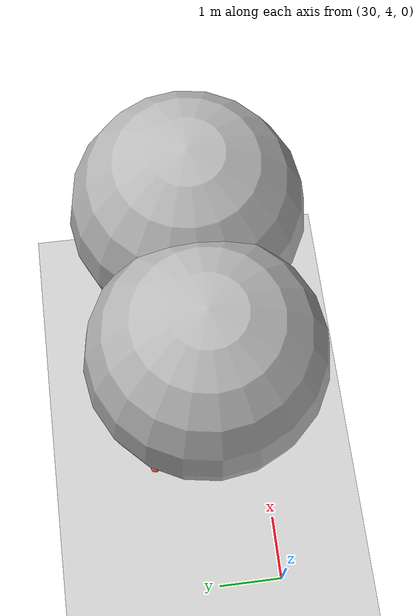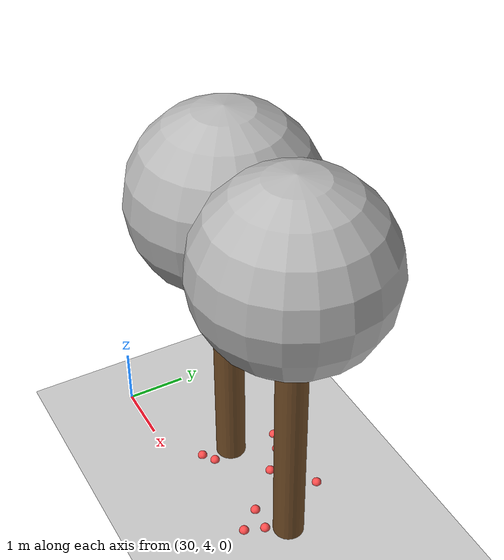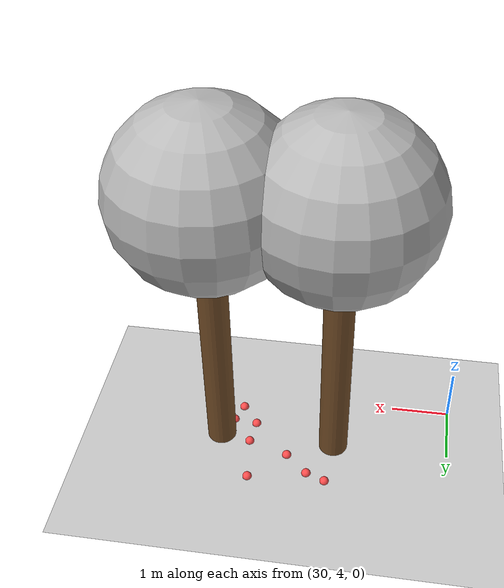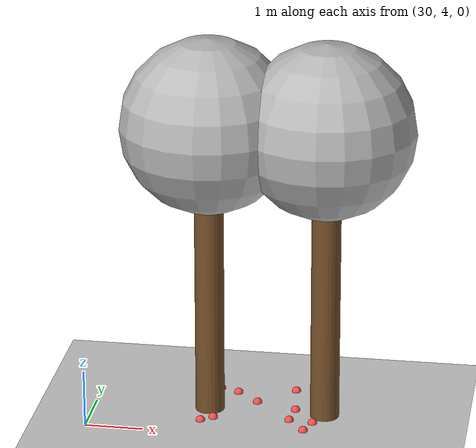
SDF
<sdf version="1.7">
 <world name="default">
  <model name="ground_plane">
   <static>1</static>
   <link name="link">
    <collision name="collision">
     <geometry><plane><normal>0 0 1</normal><size>100 100</size></plane></geometry>
     <surface>
      <contact><collide_bitmask>65535</collide_bitmask></contact>
      <friction><ode><mu>100</mu><mu2>50</mu2></ode></friction>
     </surface>
    </collision>
    <visual name="visual">
     <cast_shadows>0</cast_shadows>
     <geometry><plane><normal>0 0 1</normal><size>100 100</size></plane></geometry>
     <material>
      <script><uri>file://media/materials/scripts/gazebo.material</uri><name>Gazebo/Grey</name></script>
     </material>
    </visual>
   </link>
  </model>
  <model name="tree_simple_84">
   <static>1</static>
   <link name="link">
    <pose>0 0 0.1 0 -0 0</pose>
    <inertial>
     <mass>666</mass>
     <inertia>
      <ixx>0.0861167</ixx>
      <ixy>0</ixy>
      <ixz>0</ixz>
      <iyy>0.0861167</iyy>
      <iyz>0</iyz>
      <izz>0.0861167</izz>
     </inertia>
    </inertial>
    <collision name="collision_trunk">
     <pose>0 0 2 0 -0 0</pose>
     <geometry><cylinder><radius>0.25</radius><length>4</length></cylinder></geometry>
     <surface>
      <contact>
       <poissons_ratio>0.347</poissons_ratio>
       <elastic_modulus>8.8e+09</elastic_modulus>
       <ode><kp>100000</kp><kd>100</kd><max_vel>100</max_vel><min_depth>0.001</min_depth></ode>
      </contact>
      <friction>
       <torsional>
        <coefficient>1</coefficient>
        <use_patch_radius>0</use_patch_radius>
        <surface_radius>0.01</surface_radius>
       </torsional>
      </friction>
     </surface>
    </collision>
    <collision name="collision_treetop">
     <pose>0 0 5.2 0 -0 0</pose>
     <geometry><sphere><radius>1.5</radius></sphere></geometry>
     <surface>
      <contact>
       <poissons_ratio>0.347</poissons_ratio>
       <elastic_modulus>8.8e+09</elastic_modulus>
       <ode><kp>100000</kp><kd>100</kd><max_vel>100</max_vel><min_depth>0.001</min_depth></ode>
      </contact>
      <friction>
       <torsional>
        <coefficient>1</coefficient>
        <use_patch_radius>0</use_patch_radius>
        <surface_radius>0.01</surface_radius>
       </torsional>
      </friction>
     </surface>
    </collision>
    <visual name="trunk">
     <pose>0 0 2 0 -0 0</pose>
     <geometry><cylinder><radius>0.25</radius><length>4</length></cylinder></geometry>
     <material>
      <script>
       <uri>model://tree_simple/scripts</uri>
       <uri>model://tree_simple/materials/textures</uri>
       <name>TreeSimple/Trunk</name>
      </script>
     </material>
    </visual>
    <visual name="treetop">
     <pose>0 0 5.2 0 -0 0</pose>
     <geometry><sphere><radius>1.5</radius></sphere></geometry>
     <material>
      <script>
       <uri>model://tree_simple/scripts</uri>
       <uri>model://tree_simple/materials/textures</uri>
       <name>TreeSimple/Treetop</name>
      </script>
     </material>
    </visual>
   </link>
   <pose>32 5 -0.1 0 -0 0</pose>
  </model>
  <model name="tree_simple_85">
   <static>1</static>
   <link name="link">
    <pose>0 0 0.1 0 -0 0</pose>
    <inertial>
     <mass>666</mass>
     <inertia>
      <ixx>0.0861167</ixx>
      <ixy>0</ixy>
      <ixz>0</ixz>
      <iyy>0.0861167</iyy>
      <iyz>0</iyz>
      <izz>0.0861167</izz>
     </inertia>
    </inertial>
    <collision name="collision_trunk">
     <pose>0 0 2 0 -0 0</pose>
     <geometry><cylinder><radius>0.25</radius><length>4</length></cylinder></geometry>
     <surface>
      <contact>
       <poissons_ratio>0.347</poissons_ratio>
       <elastic_modulus>8.8e+09</elastic_modulus>
       <ode><kp>100000</kp><kd>100</kd><max_vel>100</max_vel><min_depth>0.001</min_depth></ode>
      </contact>
      <friction>
       <torsional>
        <coefficient>1</coefficient>
        <use_patch_radius>0</use_patch_radius>
        <surface_radius>0.01</surface_radius>
       </torsional>
      </friction>
     </surface>
    </collision>
    <collision name="collision_treetop">
     <pose>0 0 5.2 0 -0 0</pose>
     <geometry><sphere><radius>1.5</radius></sphere></geometry>
     <surface>
      <contact>
       <poissons_ratio>0.347</poissons_ratio>
       <elastic_modulus>8.8e+09</elastic_modulus>
       <ode><kp>100000</kp><kd>100</kd><max_vel>100</max_vel><min_depth>0.001</min_depth></ode>
      </contact>
      <friction>
       <torsional>
        <coefficient>1</coefficient>
        <use_patch_radius>0</use_patch_radius>
        <surface_radius>0.01</surface_radius>
       </torsional>
      </friction>
     </surface>
    </collision>
    <visual name="trunk">
     <pose>0 0 2 0 -0 0</pose>
     <geometry><cylinder><radius>0.25</radius><length>4</length></cylinder></geometry>
     <material>
      <script>
       <uri>model://tree_simple/scripts</uri>
       <uri>model://tree_simple/materials/textures</uri>
       <name>TreeSimple/Trunk</name>
      </script>
     </material>
    </visual>
    <visual name="treetop">
     <pose>0 0 5.2 0 -0 0</pose>
     <geometry><sphere><radius>1.5</radius></sphere></geometry>
     <material>
      <script>
       <uri>model://tree_simple/scripts</uri>
       <uri>model://tree_simple/materials/textures</uri>
       <name>TreeSimple/Treetop</name>
      </script>
     </material>
    </visual>
   </link>
   <pose>34 5 -0.1 0 -0 0</pose>
  </model>
  <model name="seed_red_331">
   <link name="link">
    <inertial>
     <mass>1</mass>
     <inertia><ixx>0.1</ixx><ixy>0</ixy><ixz>0</ixz><iyy>0.1</iyy><iyz>0</iyz><izz>0.1</izz></inertia>
    </inertial>
    <visual name="visual">
     <geometry><sphere><radius>0.08</radius></sphere></geometry>
     <material>
      <script><name>Gazebo/Grey</name><uri>file://media/materials/scripts/gazebo.material</uri></script>
      <shader type="pixel"><normal_map>__default__</normal_map></shader>
      <ambient>1 0.3 0.3 1</ambient>
      <diffuse>0.7 0.7 0.7 1</diffuse>
      <specular>0.01 0.01 0.01 1</specular>
      <emissive>0 0 0 1</emissive>
     </material>
    </visual>
    <collision name="collision">
     <geometry><sphere><radius>0.0005</radius></sphere></geometry>
     <surface>
      <friction>
       <ode><mu>1</mu><mu2>1</mu2><fdir1>0 0 0</fdir1><slip1>0</slip1><slip2>0</slip2></ode>
       <torsional>
        <coefficient>1</coefficient>
        <patch_radius>0</patch_radius>
        <surface_radius>0</surface_radius>
        <use_patch_radius>1</use_patch_radius>
        <ode><slip>0</slip></ode>
       </torsional>
      </friction>
      <bounce><restitution_coefficient>0</restitution_coefficient><threshold>1e+06</threshold></bounce>
      <contact>
       <collide_without_contact>0</collide_without_contact>
       <collide_without_contact_bitmask>1</collide_without_contact_bitmask>
       <collide_bitmask>1</collide_bitmask>
       <ode>
        <soft_cfm>0</soft_cfm>
        <soft_erp>0.2</soft_erp>
        <kp>1e+13</kp>
        <kd>1</kd>
        <max_vel>0.01</max_vel>
        <min_depth>0</min_depth>
       </ode>
       <bullet>
        <split_impulse>1</split_impulse>
        <split_impulse_penetration_threshold>-0.01</split_impulse_penetration_threshold>
        <soft_cfm>0</soft_cfm>
        <soft_erp>0.2</soft_erp>
        <kp>1e+13</kp>
        <kd>1</kd>
       </bullet>
      </contact>
     </surface>
    </collision>
   </link>
   <static>0</static>
   <pose>32.0643 5.81101 0.0005 0 -0 0</pose>
  </model>
  <model name="seed_red_333">
   <link name="link">
    <inertial>
     <mass>1</mass>
     <inertia><ixx>0.1</ixx><ixy>0</ixy><ixz>0</ixz><iyy>0.1</iyy><iyz>0</iyz><izz>0.1</izz></inertia>
    </inertial>
    <visual name="visual">
     <geometry><sphere><radius>0.08</radius></sphere></geometry>
     <material>
      <script><name>Gazebo/Grey</name><uri>file://media/materials/scripts/gazebo.material</uri></script>
      <shader type="pixel"><normal_map>__default__</normal_map></shader>
      <ambient>1 0.3 0.3 1</ambient>
      <diffuse>0.7 0.7 0.7 1</diffuse>
      <specular>0.01 0.01 0.01 1</specular>
      <emissive>0 0 0 1</emissive>
     </material>
    </visual>
    <collision name="collision">
     <geometry><sphere><radius>0.0005</radius></sphere></geometry>
     <surface>
      <friction>
       <ode><mu>1</mu><mu2>1</mu2><fdir1>0 0 0</fdir1><slip1>0</slip1><slip2>0</slip2></ode>
       <torsional>
        <coefficient>1</coefficient>
        <patch_radius>0</patch_radius>
        <surface_radius>0</surface_radius>
        <use_patch_radius>1</use_patch_radius>
        <ode><slip>0</slip></ode>
       </torsional>
      </friction>
      <bounce><restitution_coefficient>0</restitution_coefficient><threshold>1e+06</threshold></bounce>
      <contact>
       <collide_without_contact>0</collide_without_contact>
       <collide_without_contact_bitmask>1</collide_without_contact_bitmask>
       <collide_bitmask>1</collide_bitmask>
       <ode>
        <soft_cfm>0</soft_cfm>
        <soft_erp>0.2</soft_erp>
        <kp>1e+13</kp>
        <kd>1</kd>
        <max_vel>0.01</max_vel>
        <min_depth>0</min_depth>
       </ode>
       <bullet>
        <split_impulse>1</split_impulse>
        <split_impulse_penetration_threshold>-0.01</split_impulse_penetration_threshold>
        <soft_cfm>0</soft_cfm>
        <soft_erp>0.2</soft_erp>
        <kp>1e+13</kp>
        <kd>1</kd>
       </bullet>
      </contact>
     </surface>
    </collision>
   </link>
   <static>0</static>
   <pose>31.9147 4.49259 0.0005 0 -0 0</pose>
  </model>
  <model name="seed_red_334">
   <link name="link">
    <inertial>
     <mass>1</mass>
     <inertia><ixx>0.1</ixx><ixy>0</ixy><ixz>0</ixz><iyy>0.1</iyy><iyz>0</iyz><izz>0.1</izz></inertia>
    </inertial>
    <visual name="visual">
     <geometry><sphere><radius>0.08</radius></sphere></geometry>
     <material>
      <script><name>Gazebo/Grey</name><uri>file://media/materials/scripts/gazebo.material</uri></script>
      <shader type="pixel"><normal_map>__default__</normal_map></shader>
      <ambient>1 0.3 0.3 1</ambient>
      <diffuse>0.7 0.7 0.7 1</diffuse>
      <specular>0.01 0.01 0.01 1</specular>
      <emissive>0 0 0 1</emissive>
     </material>
    </visual>
    <collision name="collision">
     <geometry><sphere><radius>0.0005</radius></sphere></geometry>
     <surface>
      <friction>
       <ode><mu>1</mu><mu2>1</mu2><fdir1>0 0 0</fdir1><slip1>0</slip1><slip2>0</slip2></ode>
       <torsional>
        <coefficient>1</coefficient>
        <patch_radius>0</patch_radius>
        <surface_radius>0</surface_radius>
        <use_patch_radius>1</use_patch_radius>
        <ode><slip>0</slip></ode>
       </torsional>
      </friction>
      <bounce><restitution_coefficient>0</restitution_coefficient><threshold>1e+06</threshold></bounce>
      <contact>
       <collide_without_contact>0</collide_without_contact>
       <collide_without_contact_bitmask>1</collide_without_contact_bitmask>
       <collide_bitmask>1</collide_bitmask>
       <ode>
        <soft_cfm>0</soft_cfm>
        <soft_erp>0.2</soft_erp>
        <kp>1e+13</kp>
        <kd>1</kd>
        <max_vel>0.01</max_vel>
        <min_depth>0</min_depth>
       </ode>
       <bullet>
        <split_impulse>1</split_impulse>
        <split_impulse_penetration_threshold>-0.01</split_impulse_penetration_threshold>
        <soft_cfm>0</soft_cfm>
        <soft_erp>0.2</soft_erp>
        <kp>1e+13</kp>
        <kd>1</kd>
       </bullet>
      </contact>
     </surface>
    </collision>
   </link>
   <static>0</static>
   <pose>32.1164 4.63173 0.0005 0 -0 0</pose>
  </model>
  <model name="seed_red_338">
   <link name="link">
    <inertial>
     <mass>1</mass>
     <inertia><ixx>0.1</ixx><ixy>0</ixy><ixz>0</ixz><iyy>0.1</iyy><iyz>0</iyz><izz>0.1</izz></inertia>
    </inertial>
    <visual name="visual">
     <geometry><sphere><radius>0.08</radius></sphere></geometry>
     <material>
      <script><name>Gazebo/Grey</name><uri>file://media/materials/scripts/gazebo.material</uri></script>
      <shader type="pixel"><normal_map>__default__</normal_map></shader>
      <ambient>1 0.3 0.3 1</ambient>
      <diffuse>0.7 0.7 0.7 1</diffuse>
      <specular>0.01 0.01 0.01 1</specular>
      <emissive>0 0 0 1</emissive>
     </material>
    </visual>
    <collision name="collision">
     <geometry><sphere><radius>0.0005</radius></sphere></geometry>
     <surface>
      <friction>
       <ode><mu>1</mu><mu2>1</mu2><fdir1>0 0 0</fdir1><slip1>0</slip1><slip2>0</slip2></ode>
       <torsional>
        <coefficient>1</coefficient>
        <patch_radius>0</patch_radius>
        <surface_radius>0</surface_radius>
        <use_patch_radius>1</use_patch_radius>
        <ode><slip>0</slip></ode>
       </torsional>
      </friction>
      <bounce><restitution_coefficient>0</restitution_coefficient><threshold>1e+06</threshold></bounce>
      <contact>
       <collide_without_contact>0</collide_without_contact>
       <collide_without_contact_bitmask>1</collide_without_contact_bitmask>
       <collide_bitmask>1</collide_bitmask>
       <ode>
        <soft_cfm>0</soft_cfm>
        <soft_erp>0.2</soft_erp>
        <kp>1e+13</kp>
        <kd>1</kd>
        <max_vel>0.01</max_vel>
        <min_depth>0</min_depth>
       </ode>
       <bullet>
        <split_impulse>1</split_impulse>
        <split_impulse_penetration_threshold>-0.01</split_impulse_penetration_threshold>
        <soft_cfm>0</soft_cfm>
        <soft_erp>0.2</soft_erp>
        <kp>1e+13</kp>
        <kd>1</kd>
       </bullet>
      </contact>
     </surface>
    </collision>
   </link>
   <static>0</static>
   <pose>32.3928 5.68915 0.0005 0 -0 0</pose>
  </model>
  <model name="seed_red_341">
   <link name="link">
    <inertial>
     <mass>1</mass>
     <inertia><ixx>0.1</ixx><ixy>0</ixy><ixz>0</ixz><iyy>0.1</iyy><iyz>0</iyz><izz>0.1</izz></inertia>
    </inertial>
    <visual name="visual">
     <geometry><sphere><radius>0.08</radius></sphere></geometry>
     <material>
      <script><name>Gazebo/Grey</name><uri>file://media/materials/scripts/gazebo.material</uri></script>
      <shader type="pixel"><normal_map>__default__</normal_map></shader>
      <ambient>1 0.3 0.3 1</ambient>
      <diffuse>0.7 0.7 0.7 1</diffuse>
      <specular>0.01 0.01 0.01 1</specular>
      <emissive>0 0 0 1</emissive>
     </material>
    </visual>
    <collision name="collision">
     <geometry><sphere><radius>0.0005</radius></sphere></geometry>
     <surface>
      <friction>
       <ode><mu>1</mu><mu2>1</mu2><fdir1>0 0 0</fdir1><slip1>0</slip1><slip2>0</slip2></ode>
       <torsional>
        <coefficient>1</coefficient>
        <patch_radius>0</patch_radius>
        <surface_radius>0</surface_radius>
        <use_patch_radius>1</use_patch_radius>
        <ode><slip>0</slip></ode>
       </torsional>
      </friction>
      <bounce><restitution_coefficient>0</restitution_coefficient><threshold>1e+06</threshold></bounce>
      <contact>
       <collide_without_contact>0</collide_without_contact>
       <collide_without_contact_bitmask>1</collide_without_contact_bitmask>
       <collide_bitmask>1</collide_bitmask>
       <ode>
        <soft_cfm>0</soft_cfm>
        <soft_erp>0.2</soft_erp>
        <kp>1e+13</kp>
        <kd>1</kd>
        <max_vel>0.01</max_vel>
        <min_depth>0</min_depth>
       </ode>
       <bullet>
        <split_impulse>1</split_impulse>
        <split_impulse_penetration_threshold>-0.01</split_impulse_penetration_threshold>
        <soft_cfm>0</soft_cfm>
        <soft_erp>0.2</soft_erp>
        <kp>1e+13</kp>
        <kd>1</kd>
       </bullet>
      </contact>
     </surface>
    </collision>
   </link>
   <static>0</static>
   <pose>33.8325 4.66813 0.0005 0 -0 0</pose>
  </model>
  <model name="seed_red_342">
   <link name="link">
    <inertial>
     <mass>1</mass>
     <inertia><ixx>0.1</ixx><ixy>0</ixy><ixz>0</ixz><iyy>0.1</iyy><iyz>0</iyz><izz>0.1</izz></inertia>
    </inertial>
    <visual name="visual">
     <geometry><sphere><radius>0.08</radius></sphere></geometry>
     <material>
      <script><name>Gazebo/Grey</name><uri>file://media/materials/scripts/gazebo.material</uri></script>
      <shader type="pixel"><normal_map>__default__</normal_map></shader>
      <ambient>1 0.3 0.3 1</ambient>
      <diffuse>0.7 0.7 0.7 1</diffuse>
      <specular>0.01 0.01 0.01 1</specular>
      <emissive>0 0 0 1</emissive>
     </material>
    </visual>
    <collision name="collision">
     <geometry><sphere><radius>0.0005</radius></sphere></geometry>
     <surface>
      <friction>
       <ode><mu>1</mu><mu2>1</mu2><fdir1>0 0 0</fdir1><slip1>0</slip1><slip2>0</slip2></ode>
       <torsional>
        <coefficient>1</coefficient>
        <patch_radius>0</patch_radius>
        <surface_radius>0</surface_radius>
        <use_patch_radius>1</use_patch_radius>
        <ode><slip>0</slip></ode>
       </torsional>
      </friction>
      <bounce><restitution_coefficient>0</restitution_coefficient><threshold>1e+06</threshold></bounce>
      <contact>
       <collide_without_contact>0</collide_without_contact>
       <collide_without_contact_bitmask>1</collide_without_contact_bitmask>
       <collide_bitmask>1</collide_bitmask>
       <ode>
        <soft_cfm>0</soft_cfm>
        <soft_erp>0.2</soft_erp>
        <kp>1e+13</kp>
        <kd>1</kd>
        <max_vel>0.01</max_vel>
        <min_depth>0</min_depth>
       </ode>
       <bullet>
        <split_impulse>1</split_impulse>
        <split_impulse_penetration_threshold>-0.01</split_impulse_penetration_threshold>
        <soft_cfm>0</soft_cfm>
        <soft_erp>0.2</soft_erp>
        <kp>1e+13</kp>
        <kd>1</kd>
       </bullet>
      </contact>
     </surface>
    </collision>
   </link>
   <static>0</static>
   <pose>33.7153 4.34539 0.0005 0 -0 0</pose>
  </model>
  <model name="seed_red_343">
   <link name="link">
    <inertial>
     <mass>1</mass>
     <inertia><ixx>0.1</ixx><ixy>0</ixy><ixz>0</ixz><iyy>0.1</iyy><iyz>0</iyz><izz>0.1</izz></inertia>
    </inertial>
    <visual name="visual">
     <geometry><sphere><radius>0.08</radius></sphere></geometry>
     <material>
      <script><name>Gazebo/Grey</name><uri>file://media/materials/scripts/gazebo.material</uri></script>
      <shader type="pixel"><normal_map>__default__</normal_map></shader>
      <ambient>1 0.3 0.3 1</ambient>
      <diffuse>0.7 0.7 0.7 1</diffuse>
      <specular>0.01 0.01 0.01 1</specular>
      <emissive>0 0 0 1</emissive>
     </material>
    </visual>
    <collision name="collision">
     <geometry><sphere><radius>0.0005</radius></sphere></geometry>
     <surface>
      <friction>
       <ode><mu>1</mu><mu2>1</mu2><fdir1>0 0 0</fdir1><slip1>0</slip1><slip2>0</slip2></ode>
       <torsional>
        <coefficient>1</coefficient>
        <patch_radius>0</patch_radius>
        <surface_radius>0</surface_radius>
        <use_patch_radius>1</use_patch_radius>
        <ode><slip>0</slip></ode>
       </torsional>
      </friction>
      <bounce><restitution_coefficient>0</restitution_coefficient><threshold>1e+06</threshold></bounce>
      <contact>
       <collide_without_contact>0</collide_without_contact>
       <collide_without_contact_bitmask>1</collide_without_contact_bitmask>
       <collide_bitmask>1</collide_bitmask>
       <ode>
        <soft_cfm>0</soft_cfm>
        <soft_erp>0.2</soft_erp>
        <kp>1e+13</kp>
        <kd>1</kd>
        <max_vel>0.01</max_vel>
        <min_depth>0</min_depth>
       </ode>
       <bullet>
        <split_impulse>1</split_impulse>
        <split_impulse_penetration_threshold>-0.01</split_impulse_penetration_threshold>
        <soft_cfm>0</soft_cfm>
        <soft_erp>0.2</soft_erp>
        <kp>1e+13</kp>
        <kd>1</kd>
       </bullet>
      </contact>
     </surface>
    </collision>
   </link>
   <static>0</static>
   <pose>32.7788 5.34517 0.0005 0 -0 0</pose>
  </model>
  <model name="seed_red_344">
   <link name="link">
    <inertial>
     <mass>1</mass>
     <inertia><ixx>0.1</ixx><ixy>0</ixy><ixz>0</ixz><iyy>0.1</iyy><iyz>0</iyz><izz>0.1</izz></inertia>
    </inertial>
    <visual name="visual">
     <geometry><sphere><radius>0.08</radius></sphere></geometry>
     <material>
      <script><name>Gazebo/Grey</name><uri>file://media/materials/scripts/gazebo.material</uri></script>
      <shader type="pixel"><normal_map>__default__</normal_map></shader>
      <ambient>1 0.3 0.3 1</ambient>
      <diffuse>0.7 0.7 0.7 1</diffuse>
      <specular>0.01 0.01 0.01 1</specular>
      <emissive>0 0 0 1</emissive>
     </material>
    </visual>
    <collision name="collision">
     <geometry><sphere><radius>0.0005</radius></sphere></geometry>
     <surface>
      <friction>
       <ode><mu>1</mu><mu2>1</mu2><fdir1>0 0 0</fdir1><slip1>0</slip1><slip2>0</slip2></ode>
       <torsional>
        <coefficient>1</coefficient>
        <patch_radius>0</patch_radius>
        <surface_radius>0</surface_radius>
        <use_patch_radius>1</use_patch_radius>
        <ode><slip>0</slip></ode>
       </torsional>
      </friction>
      <bounce><restitution_coefficient>0</restitution_coefficient><threshold>1e+06</threshold></bounce>
      <contact>
       <collide_without_contact>0</collide_without_contact>
       <collide_without_contact_bitmask>1</collide_without_contact_bitmask>
       <collide_bitmask>1</collide_bitmask>
       <ode>
        <soft_cfm>0</soft_cfm>
        <soft_erp>0.2</soft_erp>
        <kp>1e+13</kp>
        <kd>1</kd>
        <max_vel>0.01</max_vel>
        <min_depth>0</min_depth>
       </ode>
       <bullet>
        <split_impulse>1</split_impulse>
        <split_impulse_penetration_threshold>-0.01</split_impulse_penetration_threshold>
        <soft_cfm>0</soft_cfm>
        <soft_erp>0.2</soft_erp>
        <kp>1e+13</kp>
        <kd>1</kd>
       </bullet>
      </contact>
     </surface>
    </collision>
   </link>
   <static>0</static>
   <pose>33.4235 4.70964 0.0005 0 -0 0</pose>
  </model>
  <model name="seed_red_345">
   <link name="link">
    <inertial>
     <mass>1</mass>
     <inertia><ixx>0.1</ixx><ixy>0</ixy><ixz>0</ixz><iyy>0.1</iyy><iyz>0</iyz><izz>0.1</izz></inertia>
    </inertial>
    <visual name="visual">
     <geometry><sphere><radius>0.08</radius></sphere></geometry>
     <material>
      <script><name>Gazebo/Grey</name><uri>file://media/materials/scripts/gazebo.material</uri></script>
      <shader type="pixel"><normal_map>__default__</normal_map></shader>
      <ambient>1 0.3 0.3 1</ambient>
      <diffuse>0.7 0.7 0.7 1</diffuse>
      <specular>0.01 0.01 0.01 1</specular>
      <emissive>0 0 0 1</emissive>
     </material>
    </visual>
    <collision name="collision">
     <geometry><sphere><radius>0.0005</radius></sphere></geometry>
     <surface>
      <friction>
       <ode><mu>1</mu><mu2>1</mu2><fdir1>0 0 0</fdir1><slip1>0</slip1><slip2>0</slip2></ode>
       <torsional>
        <coefficient>1</coefficient>
        <patch_radius>0</patch_radius>
        <surface_radius>0</surface_radius>
        <use_patch_radius>1</use_patch_radius>
        <ode><slip>0</slip></ode>
       </torsional>
      </friction>
      <bounce><restitution_coefficient>0</restitution_coefficient><threshold>1e+06</threshold></bounce>
      <contact>
       <collide_without_contact>0</collide_without_contact>
       <collide_without_contact_bitmask>1</collide_without_contact_bitmask>
       <collide_bitmask>1</collide_bitmask>
       <ode>
        <soft_cfm>0</soft_cfm>
        <soft_erp>0.2</soft_erp>
        <kp>1e+13</kp>
        <kd>1</kd>
        <max_vel>0.01</max_vel>
        <min_depth>0</min_depth>
       </ode>
       <bullet>
        <split_impulse>1</split_impulse>
        <split_impulse_penetration_threshold>-0.01</split_impulse_penetration_threshold>
        <soft_cfm>0</soft_cfm>
        <soft_erp>0.2</soft_erp>
        <kp>1e+13</kp>
        <kd>1</kd>
       </bullet>
      </contact>
     </surface>
    </collision>
   </link>
   <static>0</static>
   <pose>33.3871 5.89763 0.0005 0 -0 0</pose>
  </model>
  <model name="seed_red_346">
   <link name="link">
    <inertial>
     <mass>1</mass>
     <inertia><ixx>0.1</ixx><ixy>0</ixy><ixz>0</ixz><iyy>0.1</iyy><iyz>0</iyz><izz>0.1</izz></inertia>
    </inertial>
    <visual name="visual">
     <geometry><sphere><radius>0.08</radius></sphere></geometry>
     <material>
      <script><name>Gazebo/Grey</name><uri>file://media/materials/scripts/gazebo.material</uri></script>
      <shader type="pixel"><normal_map>__default__</normal_map></shader>
      <ambient>1 0.3 0.3 1</ambient>
      <diffuse>0.7 0.7 0.7 1</diffuse>
      <specular>0.01 0.01 0.01 1</specular>
      <emissive>0 0 0 1</emissive>
     </material>
    </visual>
    <collision name="collision">
     <geometry><sphere><radius>0.0005</radius></sphere></geometry>
     <surface>
      <friction>
       <ode><mu>1</mu><mu2>1</mu2><fdir1>0 0 0</fdir1><slip1>0</slip1><slip2>0</slip2></ode>
       <torsional>
        <coefficient>1</coefficient>
        <patch_radius>0</patch_radius>
        <surface_radius>0</surface_radius>
        <use_patch_radius>1</use_patch_radius>
        <ode><slip>0</slip></ode>
       </torsional>
      </friction>
      <bounce><restitution_coefficient>0</restitution_coefficient><threshold>1e+06</threshold></bounce>
      <contact>
       <collide_without_contact>0</collide_without_contact>
       <collide_without_contact_bitmask>1</collide_without_contact_bitmask>
       <collide_bitmask>1</collide_bitmask>
       <ode>
        <soft_cfm>0</soft_cfm>
        <soft_erp>0.2</soft_erp>
        <kp>1e+13</kp>
        <kd>1</kd>
        <max_vel>0.01</max_vel>
        <min_depth>0</min_depth>
       </ode>
       <bullet>
        <split_impulse>1</split_impulse>
        <split_impulse_penetration_threshold>-0.01</split_impulse_penetration_threshold>
        <soft_cfm>0</soft_cfm>
        <soft_erp>0.2</soft_erp>
        <kp>1e+13</kp>
        <kd>1</kd>
       </bullet>
      </contact>
     </surface>
    </collision>
   </link>
   <static>0</static>
   <pose>33.4777 5.12716 0.0005 0 -0 0</pose>
  </model>
 </world>
</sdf>
